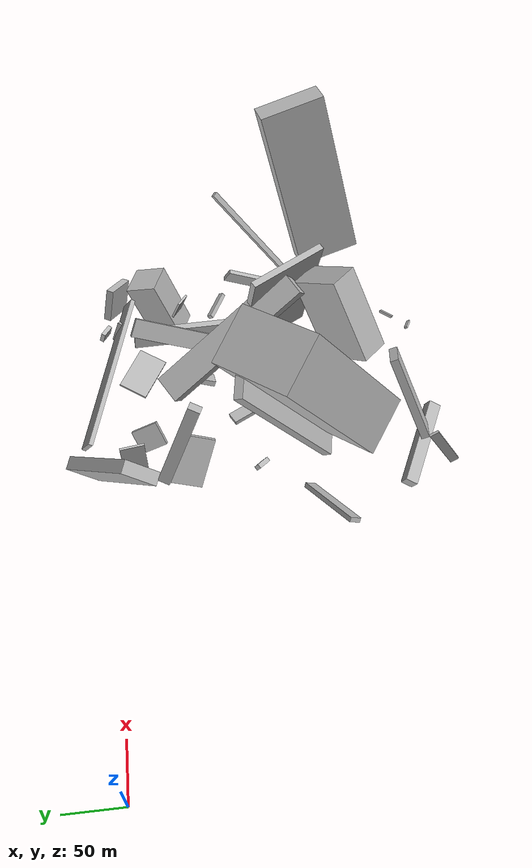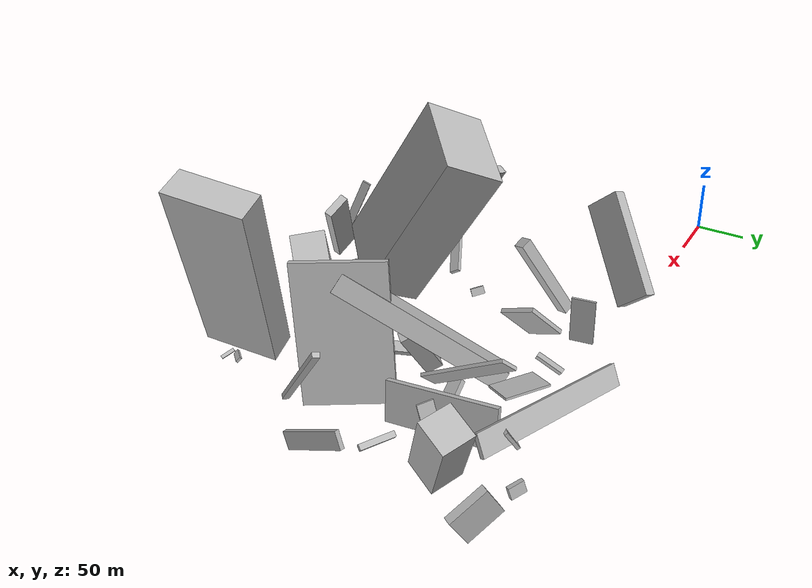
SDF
<sdf version="1.6">
 <world name="default">
  <model name="building_6">
   <static>0</static>
   <pose>259.6509988702813 -145.3770697264033 90.13682380349344 1.0791229489966476 -1.0057302092147538 1.8290417907141316</pose>
   <link name="link">
    <gravity>0</gravity>
    <pose>0 0 11.5 0 0 0</pose>
    <collision name="collision"><geometry><box><size>150 8 23</size></box></geometry></collision>
    <visual name="visual">
     <cast_shadows>0</cast_shadows>
     <geometry><box><size>150 8 23</size></box></geometry>
     <material>
      <script>
       <uri>model://HANNAS_wall/materials/scripts</uri>
       <uri>model://HANNAS_wall/materials/textures</uri>
       <name>vrc/HANNAS_wall</name>
      </script>
     </material>
    </visual>
   </link>
  </model>
  <model name="building_9">
   <static>0</static>
   <pose>459.2415905901739 -205.80912013653574 83.49658140967347 -0.2591631520216959 -0.18155681987009847 -1.3571641096785254</pose>
   <link name="link">
    <gravity>0</gravity>
    <pose>0 0 75.0 0 0 0</pose>
    <collision name="collision"><geometry><box><size>55 22 150</size></box></geometry></collision>
    <visual name="visual">
     <cast_shadows>0</cast_shadows>
     <geometry><box><size>55 22 150</size></box></geometry>
     <material>
      <script>
       <uri>model://HANNAS_wall/materials/scripts</uri>
       <uri>model://HANNAS_wall/materials/textures</uri>
       <name>vrc/HANNAS_wall</name>
      </script>
     </material>
    </visual>
   </link>
  </model>
  <model name="building_13">
   <static>0</static>
   <pose>267.6605799473157 -130.94874827357373 30.96846386329397 1.2072147905298733 -1.082710756713276 -2.083079398568813</pose>
   <link name="link">
    <gravity>0</gravity>
    <pose>0 0 6.0 0 0 0</pose>
    <collision name="collision"><geometry><box><size>7 4 12</size></box></geometry></collision>
    <visual name="visual">
     <cast_shadows>0</cast_shadows>
     <geometry><box><size>7 4 12</size></box></geometry>
     <material>
      <script>
       <uri>model://HANNAS_wall/materials/scripts</uri>
       <uri>model://HANNAS_wall/materials/textures</uri>
       <name>vrc/HANNAS_wall</name>
      </script>
     </material>
    </visual>
   </link>
  </model>
  <model name="building_15">
   <static>0</static>
   <pose>263.8235517658701 -62.886654904458396 69.58725831331046 -0.973633495032101 -1.0699772152761018 -0.9388409256764467</pose>
   <link name="link">
    <gravity>0</gravity>
    <pose>0 0 5.5 0 0 0</pose>
    <collision name="collision"><geometry><box><size>80 10 11</size></box></geometry></collision>
    <visual name="visual">
     <cast_shadows>0</cast_shadows>
     <geometry><box><size>80 10 11</size></box></geometry>
     <material>
      <script>
       <uri>model://HANNAS_wall/materials/scripts</uri>
       <uri>model://HANNAS_wall/materials/textures</uri>
       <name>vrc/HANNAS_wall</name>
      </script>
     </material>
    </visual>
   </link>
  </model>
  <model name="building_16">
   <static>0</static>
   <pose>345.2228448444072 -146.4754410458868 12.939576537642377 -0.14851779002124282 -0.08573682832461466 -1.1167403407948364</pose>
   <link name="link">
    <gravity>0</gravity>
    <pose>0 0 2.0 0 0 0</pose>
    <collision name="collision"><geometry><box><size>90 12 4</size></box></geometry></collision>
    <visual name="visual">
     <cast_shadows>0</cast_shadows>
     <geometry><box><size>90 12 4</size></box></geometry>
     <material>
      <script>
       <uri>model://HANNAS_wall/materials/scripts</uri>
       <uri>model://HANNAS_wall/materials/textures</uri>
       <name>vrc/HANNAS_wall</name>
      </script>
     </material>
    </visual>
   </link>
  </model>
  <model name="building_20">
   <static>0</static>
   <pose>365.0307740110446 -116.42028238443862 65.30680607868318 1.0437830311087748 -0.8741898894755495 2.5886956512332677</pose>
   <link name="link">
    <gravity>0</gravity>
    <pose>0 0 13.0 0 0 0</pose>
    <collision name="collision"><geometry><box><size>17 150 26</size></box></geometry></collision>
    <visual name="visual">
     <cast_shadows>0</cast_shadows>
     <geometry><box><size>17 150 26</size></box></geometry>
     <material>
      <script>
       <uri>model://HANNAS_wall/materials/scripts</uri>
       <uri>model://HANNAS_wall/materials/textures</uri>
       <name>vrc/HANNAS_wall</name>
      </script>
     </material>
    </visual>
   </link>
  </model>
  <model name="building_22">
   <static>0</static>
   <pose>455.39509880448725 -36.48258940865607 64.58165439071153 2.762808254975373 0.05219522985441237 -0.37821665882999467</pose>
   <link name="link">
    <gravity>0</gravity>
    <pose>0 0 31.5 0 0 0</pose>
    <collision name="collision"><geometry><box><size>28 30 63</size></box></geometry></collision>
    <visual name="visual">
     <cast_shadows>0</cast_shadows>
     <geometry><box><size>28 30 63</size></box></geometry>
     <material>
      <script>
       <uri>model://HANNAS_wall/materials/scripts</uri>
       <uri>model://HANNAS_wall/materials/textures</uri>
       <name>vrc/HANNAS_wall</name>
      </script>
     </material>
    </visual>
   </link>
  </model>
  <model name="building_28">
   <static>0</static>
   <pose>412.4956900947473 -69.24407321633116 29.606353960664467 0.1931557898543584 1.2766564398999496 0.26510275548974493</pose>
   <link name="link">
    <gravity>0</gravity>
    <pose>0 0 2.5 0 0 0</pose>
    <collision name="collision"><geometry><box><size>35 95 5</size></box></geometry></collision>
    <visual name="visual">
     <cast_shadows>0</cast_shadows>
     <geometry><box><size>35 95 5</size></box></geometry>
     <material>
      <script>
       <uri>model://HANNAS_wall/materials/scripts</uri>
       <uri>model://HANNAS_wall/materials/textures</uri>
       <name>vrc/HANNAS_wall</name>
      </script>
     </material>
    </visual>
   </link>
  </model>
  <model name="building_29">
   <static>0</static>
   <pose>310.00653551047003 -142.08531714202906 108.00430819249836 1.2336522797450264 -0.4701383384215075 -0.647386164182315</pose>
   <link name="link">
    <gravity>0</gravity>
    <pose>0 0 38.5 0 0 0</pose>
    <collision name="collision"><geometry><box><size>51 150 77</size></box></geometry></collision>
    <visual name="visual">
     <cast_shadows>0</cast_shadows>
     <geometry><box><size>51 150 77</size></box></geometry>
     <material>
      <script>
       <uri>model://HANNAS_wall/materials/scripts</uri>
       <uri>model://HANNAS_wall/materials/textures</uri>
       <name>vrc/HANNAS_wall</name>
      </script>
     </material>
    </visual>
   </link>
  </model>
  <model name="building_35">
   <static>0</static>
   <pose>362.4978224439738 -221.44047607727177 51.540805088940715 -0.05079563446337559 -0.582685306028434 -2.3550856350923937</pose>
   <link name="link">
    <gravity>0</gravity>
    <pose>0 0 40.0 0 0 0</pose>
    <collision name="collision"><geometry><box><size>50 27 80</size></box></geometry></collision>
    <visual name="visual">
     <cast_shadows>0</cast_shadows>
     <geometry><box><size>50 27 80</size></box></geometry>
     <material>
      <script>
       <uri>model://HANNAS_wall/materials/scripts</uri>
       <uri>model://HANNAS_wall/materials/textures</uri>
       <name>vrc/HANNAS_wall</name>
      </script>
     </material>
    </visual>
   </link>
  </model>
  <model name="building_40">
   <static>0</static>
   <pose>254.59395941677184 20.80287378241911 64.93861815000187 0.4854140651303474 0.7124354289118852 -1.6222809068791284</pose>
   <link name="link">
    <gravity>0</gravity>
    <pose>0 0 45.5 0 0 0</pose>
    <collision name="collision"><geometry><box><size>32 11 91</size></box></geometry></collision>
    <visual name="visual">
     <cast_shadows>0</cast_shadows>
     <geometry><box><size>32 11 91</size></box></geometry>
     <material>
      <script>
       <uri>model://HANNAS_wall/materials/scripts</uri>
       <uri>model://HANNAS_wall/materials/textures</uri>
       <name>vrc/HANNAS_wall</name>
      </script>
     </material>
    </visual>
   </link>
  </model>
  <model name="building_41">
   <static>0</static>
   <pose>438.4606175346938 9.059758295500464 11.6268596929024 -1.8203518254372582 -0.14092574829041224 2.60640521400767</pose>
   <link name="link">
    <gravity>0</gravity>
    <pose>0 0 2.0 0 0 0</pose>
    <collision name="collision"><geometry><box><size>13 10 4</size></box></geometry></collision>
    <visual name="visual">
     <cast_shadows>0</cast_shadows>
     <geometry><box><size>13 10 4</size></box></geometry>
     <material>
      <script>
       <uri>model://HANNAS_wall/materials/scripts</uri>
       <uri>model://HANNAS_wall/materials/textures</uri>
       <name>vrc/HANNAS_wall</name>
      </script>
     </material>
    </visual>
   </link>
  </model>
  <model name="building_48">
   <static>0</static>
   <pose>307.94928239386667 -29.634082417029802 18.953289517317998 2.4929276162944505 -0.7750178104519525 0.5454878994462603</pose>
   <link name="link">
    <gravity>0</gravity>
    <pose>0 0 2.0 0 0 0</pose>
    <collision name="collision"><geometry><box><size>22 25 4</size></box></geometry></collision>
    <visual name="visual">
     <cast_shadows>0</cast_shadows>
     <geometry><box><size>22 25 4</size></box></geometry>
     <material>
      <script>
       <uri>model://HANNAS_wall/materials/scripts</uri>
       <uri>model://HANNAS_wall/materials/textures</uri>
       <name>vrc/HANNAS_wall</name>
      </script>
     </material>
    </visual>
   </link>
  </model>
  <model name="building_51">
   <static>0</static>
   <pose>240.8578716944575 -165.10216349768365 27.941208919265552 -0.9815934243789982 -0.5152455981605337 1.7284640368286868</pose>
   <link name="link">
    <gravity>0</gravity>
    <pose>0 0 35.0 0 0 0</pose>
    <collision name="collision"><geometry><box><size>10 4 70</size></box></geometry></collision>
    <visual name="visual">
     <cast_shadows>0</cast_shadows>
     <geometry><box><size>10 4 70</size></box></geometry>
     <material>
      <script>
       <uri>model://HANNAS_wall/materials/scripts</uri>
       <uri>model://HANNAS_wall/materials/textures</uri>
       <name>vrc/HANNAS_wall</name>
      </script>
     </material>
    </visual>
   </link>
  </model>
  <model name="building_60">
   <static>0</static>
   <pose>475.9018574180551 -140.19111773920952 24.76819805007948 1.339896452728216 -0.42274486124344346 1.585205774859902</pose>
   <link name="link">
    <gravity>0</gravity>
    <pose>0 0 2.0 0 0 0</pose>
    <collision name="collision"><geometry><box><size>57 15 4</size></box></geometry></collision>
    <visual name="visual">
     <cast_shadows>0</cast_shadows>
     <geometry><box><size>57 15 4</size></box></geometry>
     <material>
      <script>
       <uri>model://HANNAS_wall/materials/scripts</uri>
       <uri>model://HANNAS_wall/materials/textures</uri>
       <name>vrc/HANNAS_wall</name>
      </script>
     </material>
    </visual>
   </link>
  </model>
  <model name="building_64">
   <static>0</static>
   <pose>461.60003929080375 2.7603100612808897 23.926418324686317 2.013739392704505 0.0016645429323538397 1.071317212436313</pose>
   <link name="link">
    <gravity>0</gravity>
    <pose>0 0 16.5 0 0 0</pose>
    <collision name="collision"><geometry><box><size>7 31 33</size></box></geometry></collision>
    <visual name="visual">
     <cast_shadows>0</cast_shadows>
     <geometry><box><size>7 31 33</size></box></geometry>
     <material>
      <script>
       <uri>model://HANNAS_wall/materials/scripts</uri>
       <uri>model://HANNAS_wall/materials/textures</uri>
       <name>vrc/HANNAS_wall</name>
      </script>
     </material>
    </visual>
   </link>
  </model>
  <model name="building_67">
   <static>0</static>
   <pose>365.3556288631871 -128.58610943523158 30.084920403405825 1.144094305427415 -0.23593931515222488 -2.274652316190635</pose>
   <link name="link">
    <gravity>0</gravity>
    <pose>0 0 7.5 0 0 0</pose>
    <collision name="collision"><geometry><box><size>10 54 15</size></box></geometry></collision>
    <visual name="visual">
     <cast_shadows>0</cast_shadows>
     <geometry><box><size>10 54 15</size></box></geometry>
     <material>
      <script>
       <uri>model://HANNAS_wall/materials/scripts</uri>
       <uri>model://HANNAS_wall/materials/textures</uri>
       <name>vrc/HANNAS_wall</name>
      </script>
     </material>
    </visual>
   </link>
  </model>
  <model name="building_69">
   <static>0</static>
   <pose>468.0684038872014 -170.58798289562014 46.856155563613584 0.340215124130284 -0.6211226013593975 -2.491241385822116</pose>
   <link name="link">
    <gravity>0</gravity>
    <pose>0 0 53.5 0 0 0</pose>
    <collision name="collision"><geometry><box><size>4 5 107</size></box></geometry></collision>
    <visual name="visual">
     <cast_shadows>0</cast_shadows>
     <geometry><box><size>4 5 107</size></box></geometry>
     <material>
      <script>
       <uri>model://HANNAS_wall/materials/scripts</uri>
       <uri>model://HANNAS_wall/materials/textures</uri>
       <name>vrc/HANNAS_wall</name>
      </script>
     </material>
    </visual>
   </link>
  </model>
  <model name="building_77">
   <static>0</static>
   <pose>301.72581104496265 24.933675193749558 22.567335031502502 -1.2764221056372245 -1.0128182894871736 -2.1254142974161603</pose>
   <link name="link">
    <gravity>0</gravity>
    <pose>0 0 75.0 0 0 0</pose>
    <collision name="collision"><geometry><box><size>19 4 150</size></box></geometry></collision>
    <visual name="visual">
     <cast_shadows>0</cast_shadows>
     <geometry><box><size>19 4 150</size></box></geometry>
     <material>
      <script>
       <uri>model://HANNAS_wall/materials/scripts</uri>
       <uri>model://HANNAS_wall/materials/textures</uri>
       <name>vrc/HANNAS_wall</name>
      </script>
     </material>
    </visual>
   </link>
  </model>
  <model name="building_82">
   <static>0</static>
   <pose>408.5917519042584 -158.33047576561654 70.54755513236951 0.028477606987071316 -1.363270223606305 -2.6341625450044353</pose>
   <link name="link">
    <gravity>0</gravity>
    <pose>0 0 3.0 0 0 0</pose>
    <collision name="collision"><geometry><box><size>120 74 6</size></box></geometry></collision>
    <visual name="visual">
     <cast_shadows>0</cast_shadows>
     <geometry><box><size>120 74 6</size></box></geometry>
     <material>
      <script>
       <uri>model://HANNAS_wall/materials/scripts</uri>
       <uri>model://HANNAS_wall/materials/textures</uri>
       <name>vrc/HANNAS_wall</name>
      </script>
     </material>
    </visual>
   </link>
  </model>
  <model name="building_88">
   <static>0</static>
   <pose>452.73165966870397 -102.35322838662964 19.318601718846367 -0.06254057391998367 0.6636235975187902 1.0417518537037953</pose>
   <link name="link">
    <gravity>0</gravity>
    <pose>0 0 2.0 0 0 0</pose>
    <collision name="collision"><geometry><box><size>5 29 4</size></box></geometry></collision>
    <visual name="visual">
     <cast_shadows>0</cast_shadows>
     <geometry><box><size>5 29 4</size></box></geometry>
     <material>
      <script>
       <uri>model://HANNAS_wall/materials/scripts</uri>
       <uri>model://HANNAS_wall/materials/textures</uri>
       <name>vrc/HANNAS_wall</name>
      </script>
     </material>
    </visual>
   </link>
  </model>
  <model name="building_90">
   <static>0</static>
   <pose>273.7995927116529 -268.75078739974896 45.63514934871518 0.45926766582625544 0.3963900411866817 1.5860955213344472</pose>
   <link name="link">
    <gravity>0</gravity>
    <pose>0 0 40.5 0 0 0</pose>
    <collision name="collision"><geometry><box><size>7 22 81</size></box></geometry></collision>
    <visual name="visual">
     <cast_shadows>0</cast_shadows>
     <geometry><box><size>7 22 81</size></box></geometry>
     <material>
      <script>
       <uri>model://HANNAS_wall/materials/scripts</uri>
       <uri>model://HANNAS_wall/materials/textures</uri>
       <name>vrc/HANNAS_wall</name>
      </script>
     </material>
    </visual>
   </link>
  </model>
  <model name="building_94">
   <static>0</static>
   <pose>370.1784384513807 -92.46713578446906 12.864261647893159 -1.2054414650755594 0.4296613365895017 0.08749111449844547</pose>
   <link name="link">
    <gravity>0</gravity>
    <pose>0 0 6.5 0 0 0</pose>
    <collision name="collision"><geometry><box><size>15 5 13</size></box></geometry></collision>
    <visual name="visual">
     <cast_shadows>0</cast_shadows>
     <geometry><box><size>15 5 13</size></box></geometry>
     <material>
      <script>
       <uri>model://HANNAS_wall/materials/scripts</uri>
       <uri>model://HANNAS_wall/materials/textures</uri>
       <name>vrc/HANNAS_wall</name>
      </script>
     </material>
    </visual>
   </link>
  </model>
  <model name="building_100">
   <static>0</static>
   <pose>278.0240957526354 -64.30190742374897 26.86283354766556 0.6075265815520898 -0.8646702782091129 -0.5450043057259268</pose>
   <link name="link">
    <gravity>0</gravity>
    <pose>0 0 2.0 0 0 0</pose>
    <collision name="collision"><geometry><box><size>46 34 4</size></box></geometry></collision>
    <visual name="visual">
     <cast_shadows>0</cast_shadows>
     <geometry><box><size>46 34 4</size></box></geometry>
     <material>
      <script>
       <uri>model://HANNAS_wall/materials/scripts</uri>
       <uri>model://HANNAS_wall/materials/textures</uri>
       <name>vrc/HANNAS_wall</name>
      </script>
     </material>
    </visual>
   </link>
  </model>
  <model name="building_101">
   <static>0</static>
   <pose>420.5782778676655 -284.8607451883627 9.99711081909144 -2.4490261014516954 -0.2798536719099551 2.699186715436101</pose>
   <link name="link">
    <gravity>0</gravity>
    <pose>0 0 1.0 0 0 0</pose>
    <collision name="collision"><geometry><box><size>12 3 2</size></box></geometry></collision>
    <visual name="visual">
     <cast_shadows>0</cast_shadows>
     <geometry><box><size>12 3 2</size></box></geometry>
     <material>
      <script>
       <uri>model://HANNAS_wall/materials/scripts</uri>
       <uri>model://HANNAS_wall/materials/textures</uri>
       <name>vrc/HANNAS_wall</name>
      </script>
     </material>
    </visual>
   </link>
  </model>
  <model name="building_103">
   <static>0</static>
   <pose>278.5421824193038 -268.0688201742794 15.326818069077323 0.14610324782006504 0.39010959162061576 -1.9503318847186601</pose>
   <link name="link">
    <gravity>0</gravity>
    <pose>0 0 5.5 0 0 0</pose>
    <collision name="collision"><geometry><box><size>11 80 11</size></box></geometry></collision>
    <visual name="visual">
     <cast_shadows>0</cast_shadows>
     <geometry><box><size>11 80 11</size></box></geometry>
     <material>
      <script>
       <uri>model://HANNAS_wall/materials/scripts</uri>
       <uri>model://HANNAS_wall/materials/textures</uri>
       <name>vrc/HANNAS_wall</name>
      </script>
     </material>
    </visual>
   </link>
  </model>
  <model name="building_109">
   <static>0</static>
   <pose>426.71612570291944 -264.1150832816696 18.736862507371505 0.6508621480693294 -0.06646751938685491 0.9233516187063734</pose>
   <link name="link">
    <gravity>0</gravity>
    <pose>0 0 1.0 0 0 0</pose>
    <collision name="collision"><geometry><box><size>13 5 2</size></box></geometry></collision>
    <visual name="visual">
     <cast_shadows>0</cast_shadows>
     <geometry><box><size>13 5 2</size></box></geometry>
     <material>
      <script>
       <uri>model://HANNAS_wall/materials/scripts</uri>
       <uri>model://HANNAS_wall/materials/textures</uri>
       <name>vrc/HANNAS_wall</name>
      </script>
     </material>
    </visual>
   </link>
  </model>
  <model name="building_112">
   <static>0</static>
   <pose>414.87109473838336 -3.8225575070002895 27.84456457521809 -0.07167935397170642 -0.500527095944195 2.409370499617603</pose>
   <link name="link">
    <gravity>0</gravity>
    <pose>0 0 9.5 0 0 0</pose>
    <collision name="collision"><geometry><box><size>3 6 19</size></box></geometry></collision>
    <visual name="visual">
     <cast_shadows>0</cast_shadows>
     <geometry><box><size>3 6 19</size></box></geometry>
     <material>
      <script>
       <uri>model://HANNAS_wall/materials/scripts</uri>
       <uri>model://HANNAS_wall/materials/textures</uri>
       <name>vrc/HANNAS_wall</name>
      </script>
     </material>
    </visual>
   </link>
  </model>
  <model name="building_113">
   <static>0</static>
   <pose>440.3886123069713 -69.75254646838835 45.816674683068186 1.5061611224625393 0.3529871184364801 -2.193542533151067</pose>
   <link name="link">
    <gravity>0</gravity>
    <pose>0 0 6.5 0 0 0</pose>
    <collision name="collision"><geometry><box><size>2 23 13</size></box></geometry></collision>
    <visual name="visual">
     <cast_shadows>0</cast_shadows>
     <geometry><box><size>2 23 13</size></box></geometry>
     <material>
      <script>
       <uri>model://HANNAS_wall/materials/scripts</uri>
       <uri>model://HANNAS_wall/materials/textures</uri>
       <name>vrc/HANNAS_wall</name>
      </script>
     </material>
    </visual>
   </link>
  </model>
  <model name="building_123">
   <static>0</static>
   <pose>366.1678719657744 -28.265747487058146 36.7193165522399 0.21980641111172367 -0.09647800016389792 -0.536309017261308</pose>
   <link name="link">
    <gravity>0</gravity>
    <pose>0 0 1.0 0 0 0</pose>
    <collision name="collision"><geometry><box><size>40 26 2</size></box></geometry></collision>
    <visual name="visual">
     <cast_shadows>0</cast_shadows>
     <geometry><box><size>40 26 2</size></box></geometry>
     <material>
      <script>
       <uri>model://HANNAS_wall/materials/scripts</uri>
       <uri>model://HANNAS_wall/materials/textures</uri>
       <name>vrc/HANNAS_wall</name>
      </script>
     </material>
    </visual>
   </link>
  </model>
  <model name="building_126">
   <static>0</static>
   <pose>274.4133279875642 -17.66788635859096 42.93088666516575 1.62579927687988 -0.0016808893246923493 -1.4228327148074194</pose>
   <link name="link">
    <gravity>0</gravity>
    <pose>0 0 1.0 0 0 0</pose>
    <collision name="collision"><geometry><box><size>21 42 2</size></box></geometry></collision>
    <visual name="visual">
     <cast_shadows>0</cast_shadows>
     <geometry><box><size>21 42 2</size></box></geometry>
     <material>
      <script>
       <uri>model://HANNAS_wall/materials/scripts</uri>
       <uri>model://HANNAS_wall/materials/textures</uri>
       <name>vrc/HANNAS_wall</name>
      </script>
     </material>
    </visual>
   </link>
  </model>
  <model name="building_129">
   <static>0</static>
   <pose>321.06333069183773 -188.19008850583964 22.26645262306204 -0.06080067562023541 0.3919058385859187 0.1457652562797783</pose>
   <link name="link">
    <gravity>0</gravity>
    <pose>0 0 2.0 0 0 0</pose>
    <collision name="collision"><geometry><box><size>2 7 4</size></box></geometry></collision>
    <visual name="visual">
     <cast_shadows>0</cast_shadows>
     <geometry><box><size>2 7 4</size></box></geometry>
     <material>
      <script>
       <uri>model://HANNAS_wall/materials/scripts</uri>
       <uri>model://HANNAS_wall/materials/textures</uri>
       <name>vrc/HANNAS_wall</name>
      </script>
     </material>
    </visual>
   </link>
  </model>
  <model name="building_131">
   <static>0</static>
   <pose>386.04298468196566 -56.53413095327849 51.5788856928568 0.5799795266062303 0.5116053131221584 0.3703812411737972</pose>
   <link name="link">
    <gravity>0</gravity>
    <pose>0 0 8.5 0 0 0</pose>
    <collision name="collision"><geometry><box><size>3 80 17</size></box></geometry></collision>
    <visual name="visual">
     <cast_shadows>0</cast_shadows>
     <geometry><box><size>3 80 17</size></box></geometry>
     <material>
      <script>
       <uri>model://HANNAS_wall/materials/scripts</uri>
       <uri>model://HANNAS_wall/materials/textures</uri>
       <name>vrc/HANNAS_wall</name>
      </script>
     </material>
    </visual>
   </link>
  </model>
  <model name="building_135">
   <static>0</static>
   <pose>247.33842136376424 -277.77081252503325 61.968989494955764 -1.7906998320794767 -1.1087837643427167 2.031592975500674</pose>
   <link name="link">
    <gravity>0</gravity>
    <pose>0 0 1.0 0 0 0</pose>
    <collision name="collision"><geometry><box><size>80 8 2</size></box></geometry></collision>
    <visual name="visual">
     <cast_shadows>0</cast_shadows>
     <geometry><box><size>80 8 2</size></box></geometry>
     <material>
      <script>
       <uri>model://HANNAS_wall/materials/scripts</uri>
       <uri>model://HANNAS_wall/materials/textures</uri>
       <name>vrc/HANNAS_wall</name>
      </script>
     </material>
    </visual>
   </link>
  </model>
 </world>
</sdf>
